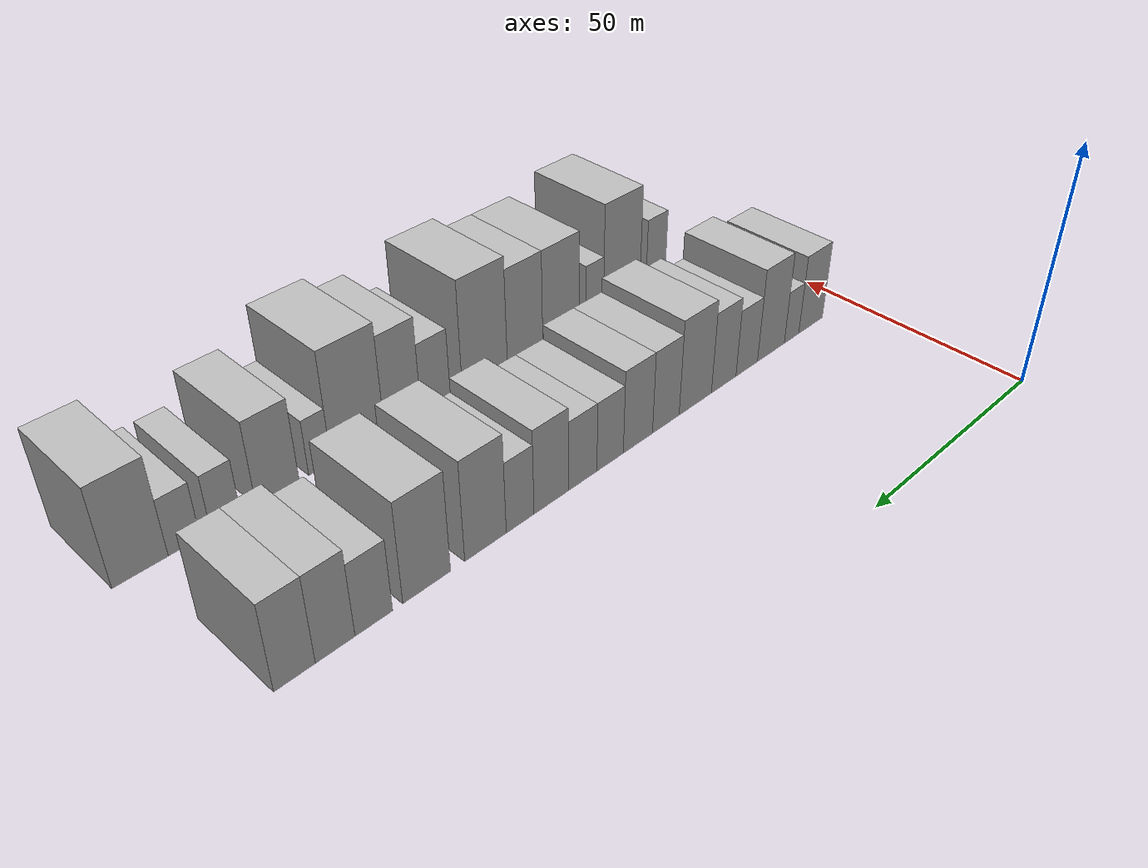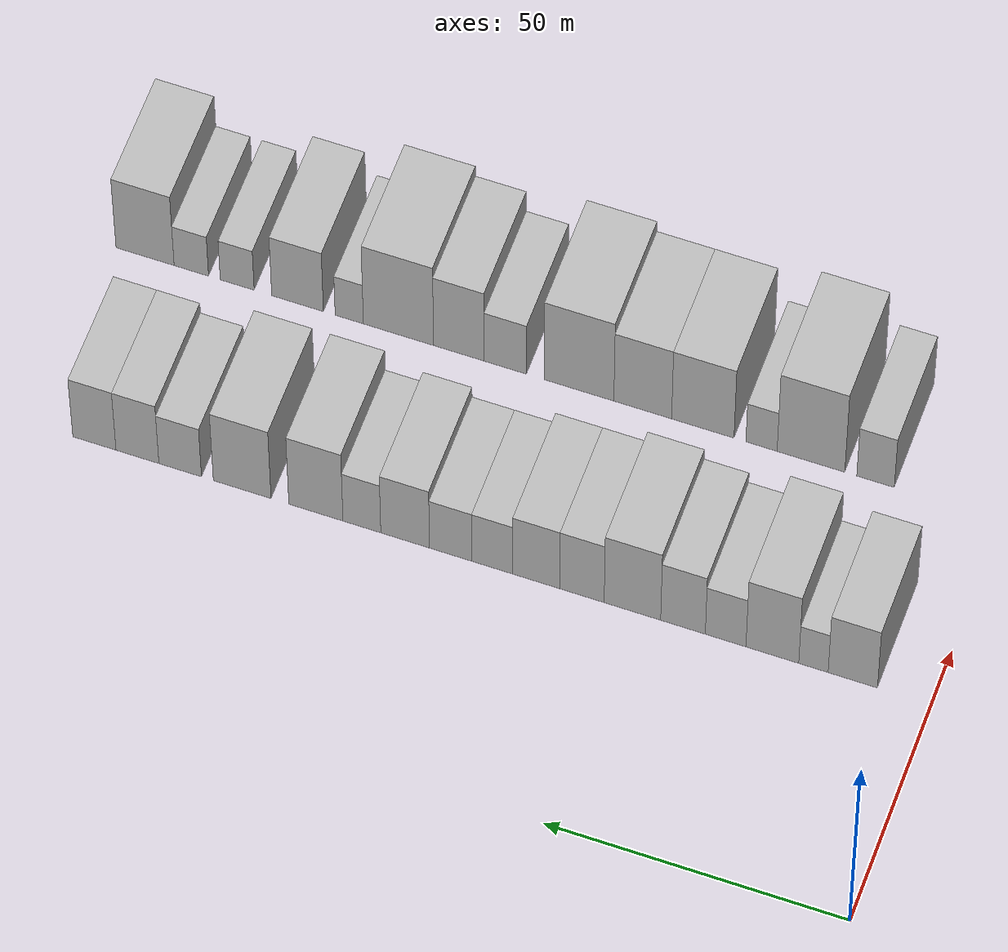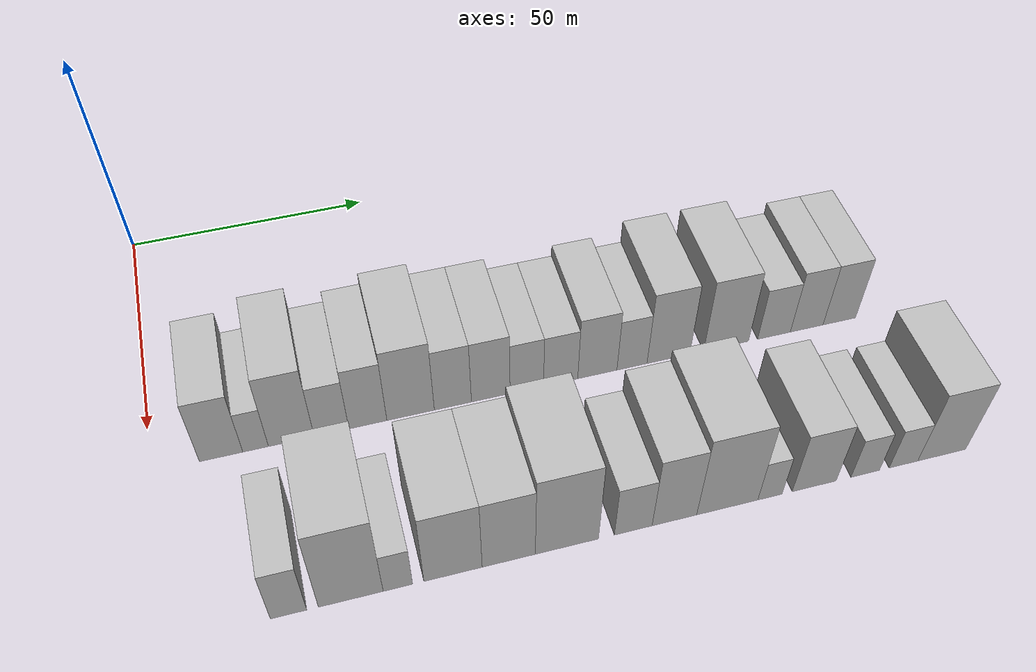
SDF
<sdf version="1.6">
 <world name="default">
  <model name="building_33">
   <static>1</static>
   <pose>50.0000 13.0266 0 0.000000 0.000000 0.000000</pose>
   <link name="link">
    <pose>0 0 9.00 0 0 0</pose>
    <collision name="collision"><geometry><box><size>20.0000 8.1283 18.0000</size></box></geometry></collision>
    <visual name="visual">
     <cast_shadows>0</cast_shadows>
     <geometry><box><size>20.0000 8.1283 18.0000</size></box></geometry>
     <material>
      <script>
       <uri>model://HANNAS_wall/materials/scripts</uri>
       <uri>model://HANNAS_wall/materials/textures</uri>
       <name>vrc/HANNAS_wall</name>
      </script>
     </material>
    </visual>
   </link>
  </model>
  <model name="building_34">
   <static>1</static>
   <pose>50.0000 19.5175 0 0.000000 0.000000 0.000000</pose>
   <link name="link">
    <pose>0 0 6.00 0 0 0</pose>
    <collision name="collision"><geometry><box><size>20.0000 4.8535 12.0000</size></box></geometry></collision>
    <visual name="visual">
     <cast_shadows>0</cast_shadows>
     <geometry><box><size>20.0000 4.8535 12.0000</size></box></geometry>
     <material>
      <script>
       <uri>model://HANNAS_wall/materials/scripts</uri>
       <uri>model://HANNAS_wall/materials/textures</uri>
       <name>vrc/HANNAS_wall</name>
      </script>
     </material>
    </visual>
   </link>
  </model>
  <model name="building_35">
   <static>1</static>
   <pose>50.0000 26.3056 0 0.000000 0.000000 0.000000</pose>
   <link name="link">
    <pose>0 0 10.50 0 0 0</pose>
    <collision name="collision"><geometry><box><size>20.0000 8.7228 21.0000</size></box></geometry></collision>
    <visual name="visual">
     <cast_shadows>0</cast_shadows>
     <geometry><box><size>20.0000 8.7228 21.0000</size></box></geometry>
     <material>
      <script>
       <uri>model://HANNAS_wall/materials/scripts</uri>
       <uri>model://HANNAS_wall/materials/textures</uri>
       <name>vrc/HANNAS_wall</name>
      </script>
     </material>
    </visual>
   </link>
  </model>
  <model name="building_36">
   <static>1</static>
   <pose>50.0000 34.0300 0 0.000000 0.000000 0.000000</pose>
   <link name="link">
    <pose>0 0 7.50 0 0 0</pose>
    <collision name="collision"><geometry><box><size>20.0000 6.7259 15.0000</size></box></geometry></collision>
    <visual name="visual">
     <cast_shadows>0</cast_shadows>
     <geometry><box><size>20.0000 6.7259 15.0000</size></box></geometry>
     <material>
      <script>
       <uri>model://HANNAS_wall/materials/scripts</uri>
       <uri>model://HANNAS_wall/materials/textures</uri>
       <name>vrc/HANNAS_wall</name>
      </script>
     </material>
    </visual>
   </link>
  </model>
  <model name="building_37">
   <static>1</static>
   <pose>50.0000 41.0976 0 0.000000 0.000000 0.000000</pose>
   <link name="link">
    <pose>0 0 9.00 0 0 0</pose>
    <collision name="collision"><geometry><box><size>20.0000 7.4093 18.0000</size></box></geometry></collision>
    <visual name="visual">
     <cast_shadows>0</cast_shadows>
     <geometry><box><size>20.0000 7.4093 18.0000</size></box></geometry>
     <material>
      <script>
       <uri>model://HANNAS_wall/materials/scripts</uri>
       <uri>model://HANNAS_wall/materials/textures</uri>
       <name>vrc/HANNAS_wall</name>
      </script>
     </material>
    </visual>
   </link>
  </model>
  <model name="building_38">
   <static>1</static>
   <pose>50.0000 49.4963 0 0.000000 0.000000 0.000000</pose>
   <link name="link">
    <pose>0 0 10.50 0 0 0</pose>
    <collision name="collision"><geometry><box><size>20.0000 9.3881 21.0000</size></box></geometry></collision>
    <visual name="visual">
     <cast_shadows>0</cast_shadows>
     <geometry><box><size>20.0000 9.3881 21.0000</size></box></geometry>
     <material>
      <script>
       <uri>model://HANNAS_wall/materials/scripts</uri>
       <uri>model://HANNAS_wall/materials/textures</uri>
       <name>vrc/HANNAS_wall</name>
      </script>
     </material>
    </visual>
   </link>
  </model>
  <model name="building_39">
   <static>1</static>
   <pose>50.0000 57.9015 0 0.000000 0.000000 0.000000</pose>
   <link name="link">
    <pose>0 0 9.00 0 0 0</pose>
    <collision name="collision"><geometry><box><size>20.0000 7.4222 18.0000</size></box></geometry></collision>
    <visual name="visual">
     <cast_shadows>0</cast_shadows>
     <geometry><box><size>20.0000 7.4222 18.0000</size></box></geometry>
     <material>
      <script>
       <uri>model://HANNAS_wall/materials/scripts</uri>
       <uri>model://HANNAS_wall/materials/textures</uri>
       <name>vrc/HANNAS_wall</name>
      </script>
     </material>
    </visual>
   </link>
  </model>
  <model name="building_40">
   <static>1</static>
   <pose>50.0000 65.5200 0 0.000000 0.000000 0.000000</pose>
   <link name="link">
    <pose>0 0 9.00 0 0 0</pose>
    <collision name="collision"><geometry><box><size>20.0000 7.8149 18.0000</size></box></geometry></collision>
    <visual name="visual">
     <cast_shadows>0</cast_shadows>
     <geometry><box><size>20.0000 7.8149 18.0000</size></box></geometry>
     <material>
      <script>
       <uri>model://HANNAS_wall/materials/scripts</uri>
       <uri>model://HANNAS_wall/materials/textures</uri>
       <name>vrc/HANNAS_wall</name>
      </script>
     </material>
    </visual>
   </link>
  </model>
  <model name="building_41">
   <static>1</static>
   <pose>50.0000 72.8399 0 0.000000 0.000000 0.000000</pose>
   <link name="link">
    <pose>0 0 7.50 0 0 0</pose>
    <collision name="collision"><geometry><box><size>20.0000 6.8249 15.0000</size></box></geometry></collision>
    <visual name="visual">
     <cast_shadows>0</cast_shadows>
     <geometry><box><size>20.0000 6.8249 15.0000</size></box></geometry>
     <material>
      <script>
       <uri>model://HANNAS_wall/materials/scripts</uri>
       <uri>model://HANNAS_wall/materials/textures</uri>
       <name>vrc/HANNAS_wall</name>
      </script>
     </material>
    </visual>
   </link>
  </model>
  <model name="building_42">
   <static>1</static>
   <pose>50.0000 79.7931 0 0.000000 0.000000 0.000000</pose>
   <link name="link">
    <pose>0 0 7.50 0 0 0</pose>
    <collision name="collision"><geometry><box><size>20.0000 7.0817 15.0000</size></box></geometry></collision>
    <visual name="visual">
     <cast_shadows>0</cast_shadows>
     <geometry><box><size>20.0000 7.0817 15.0000</size></box></geometry>
     <material>
      <script>
       <uri>model://HANNAS_wall/materials/scripts</uri>
       <uri>model://HANNAS_wall/materials/textures</uri>
       <name>vrc/HANNAS_wall</name>
      </script>
     </material>
    </visual>
   </link>
  </model>
  <model name="building_43">
   <static>1</static>
   <pose>50.0000 87.4263 0 0.000000 0.000000 0.000000</pose>
   <link name="link">
    <pose>0 0 9.00 0 0 0</pose>
    <collision name="collision"><geometry><box><size>20.0000 8.1846 18.0000</size></box></geometry></collision>
    <visual name="visual">
     <cast_shadows>0</cast_shadows>
     <geometry><box><size>20.0000 8.1846 18.0000</size></box></geometry>
     <material>
      <script>
       <uri>model://HANNAS_wall/materials/scripts</uri>
       <uri>model://HANNAS_wall/materials/textures</uri>
       <name>vrc/HANNAS_wall</name>
      </script>
     </material>
    </visual>
   </link>
  </model>
  <model name="building_44">
   <static>1</static>
   <pose>50.0000 94.6946 0 0.000000 0.000000 0.000000</pose>
   <link name="link">
    <pose>0 0 7.50 0 0 0</pose>
    <collision name="collision"><geometry><box><size>20.0000 6.3521 15.0000</size></box></geometry></collision>
    <visual name="visual">
     <cast_shadows>0</cast_shadows>
     <geometry><box><size>20.0000 6.3521 15.0000</size></box></geometry>
     <material>
      <script>
       <uri>model://HANNAS_wall/materials/scripts</uri>
       <uri>model://HANNAS_wall/materials/textures</uri>
       <name>vrc/HANNAS_wall</name>
      </script>
     </material>
    </visual>
   </link>
  </model>
  <model name="building_45">
   <static>1</static>
   <pose>50.0000 102.4295 0 0.000000 0.000000 0.000000</pose>
   <link name="link">
    <pose>0 0 10.50 0 0 0</pose>
    <collision name="collision"><geometry><box><size>20.0000 9.1175 21.0000</size></box></geometry></collision>
    <visual name="visual">
     <cast_shadows>0</cast_shadows>
     <geometry><box><size>20.0000 9.1175 21.0000</size></box></geometry>
     <material>
      <script>
       <uri>model://HANNAS_wall/materials/scripts</uri>
       <uri>model://HANNAS_wall/materials/textures</uri>
       <name>vrc/HANNAS_wall</name>
      </script>
     </material>
    </visual>
   </link>
  </model>
  <model name="building_46">
   <static>1</static>
   <pose>50.0000 114.8611 0 0.000000 0.000000 0.000000</pose>
   <link name="link">
    <pose>0 0 10.50 0 0 0</pose>
    <collision name="collision"><geometry><box><size>20.0000 9.7458 21.0000</size></box></geometry></collision>
    <visual name="visual">
     <cast_shadows>0</cast_shadows>
     <geometry><box><size>20.0000 9.7458 21.0000</size></box></geometry>
     <material>
      <script>
       <uri>model://HANNAS_wall/materials/scripts</uri>
       <uri>model://HANNAS_wall/materials/textures</uri>
       <name>vrc/HANNAS_wall</name>
      </script>
     </material>
    </visual>
   </link>
  </model>
  <model name="building_47">
   <static>1</static>
   <pose>50.0000 125.3384 0 0.000000 0.000000 0.000000</pose>
   <link name="link">
    <pose>0 0 7.50 0 0 0</pose>
    <collision name="collision"><geometry><box><size>20.0000 7.2088 15.0000</size></box></geometry></collision>
    <visual name="visual">
     <cast_shadows>0</cast_shadows>
     <geometry><box><size>20.0000 7.2088 15.0000</size></box></geometry>
     <material>
      <script>
       <uri>model://HANNAS_wall/materials/scripts</uri>
       <uri>model://HANNAS_wall/materials/textures</uri>
       <name>vrc/HANNAS_wall</name>
      </script>
     </material>
    </visual>
   </link>
  </model>
  <model name="building_48">
   <static>1</static>
   <pose>50.0000 132.5810 0 0.000000 0.000000 0.000000</pose>
   <link name="link">
    <pose>0 0 9.00 0 0 0</pose>
    <collision name="collision"><geometry><box><size>20.0000 7.2764 18.0000</size></box></geometry></collision>
    <visual name="visual">
     <cast_shadows>0</cast_shadows>
     <geometry><box><size>20.0000 7.2764 18.0000</size></box></geometry>
     <material>
      <script>
       <uri>model://HANNAS_wall/materials/scripts</uri>
       <uri>model://HANNAS_wall/materials/textures</uri>
       <name>vrc/HANNAS_wall</name>
      </script>
     </material>
    </visual>
   </link>
  </model>
  <model name="building_49">
   <static>1</static>
   <pose>50.0000 139.8819 0 0.000000 0.000000 0.000000</pose>
   <link name="link">
    <pose>0 0 9.00 0 0 0</pose>
    <collision name="collision"><geometry><box><size>20.0000 7.3253 18.0000</size></box></geometry></collision>
    <visual name="visual">
     <cast_shadows>0</cast_shadows>
     <geometry><box><size>20.0000 7.3253 18.0000</size></box></geometry>
     <material>
      <script>
       <uri>model://HANNAS_wall/materials/scripts</uri>
       <uri>model://HANNAS_wall/materials/textures</uri>
       <name>vrc/HANNAS_wall</name>
      </script>
     </material>
    </visual>
   </link>
  </model>
  <model name="building_96">
   <static>1</static>
   <pose>85.0000 20.9783 0 0.000000 0.000000 0.000000</pose>
   <link name="link">
    <pose>0 0 7.50 0 0 0</pose>
    <collision name="collision"><geometry><box><size>20.0000 6.2556 15.0000</size></box></geometry></collision>
    <visual name="visual">
     <cast_shadows>0</cast_shadows>
     <geometry><box><size>20.0000 6.2556 15.0000</size></box></geometry>
     <material>
      <script>
       <uri>model://HANNAS_wall/materials/scripts</uri>
       <uri>model://HANNAS_wall/materials/textures</uri>
       <name>vrc/HANNAS_wall</name>
      </script>
     </material>
    </visual>
   </link>
  </model>
  <model name="building_97">
   <static>1</static>
   <pose>85.0000 31.7660 0 0.000000 0.000000 0.000000</pose>
   <link name="link">
    <pose>0 0 12.00 0 0 0</pose>
    <collision name="collision"><geometry><box><size>20.0000 11.3199 24.0000</size></box></geometry></collision>
    <visual name="visual">
     <cast_shadows>0</cast_shadows>
     <geometry><box><size>20.0000 11.3199 24.0000</size></box></geometry>
     <material>
      <script>
       <uri>model://HANNAS_wall/materials/scripts</uri>
       <uri>model://HANNAS_wall/materials/textures</uri>
       <name>vrc/HANNAS_wall</name>
      </script>
     </material>
    </visual>
   </link>
  </model>
  <model name="building_98">
   <static>1</static>
   <pose>85.0000 40.0359 0 0.000000 0.000000 0.000000</pose>
   <link name="link">
    <pose>0 0 6.00 0 0 0</pose>
    <collision name="collision"><geometry><box><size>20.0000 5.2199 12.0000</size></box></geometry></collision>
    <visual name="visual">
     <cast_shadows>0</cast_shadows>
     <geometry><box><size>20.0000 5.2199 12.0000</size></box></geometry>
     <material>
      <script>
       <uri>model://HANNAS_wall/materials/scripts</uri>
       <uri>model://HANNAS_wall/materials/textures</uri>
       <name>vrc/HANNAS_wall</name>
      </script>
     </material>
    </visual>
   </link>
  </model>
  <model name="building_99">
   <static>1</static>
   <pose>85.0000 49.8886 0 0.000000 0.000000 0.000000</pose>
   <link name="link">
    <pose>0 0 10.50 0 0 0</pose>
    <collision name="collision"><geometry><box><size>20.0000 10.4854 21.0000</size></box></geometry></collision>
    <visual name="visual">
     <cast_shadows>0</cast_shadows>
     <geometry><box><size>20.0000 10.4854 21.0000</size></box></geometry>
     <material>
      <script>
       <uri>model://HANNAS_wall/materials/scripts</uri>
       <uri>model://HANNAS_wall/materials/textures</uri>
       <name>vrc/HANNAS_wall</name>
      </script>
     </material>
    </visual>
   </link>
  </model>
  <model name="building_100">
   <static>1</static>
   <pose>85.0000 59.9906 0 0.000000 0.000000 0.000000</pose>
   <link name="link">
    <pose>0 0 10.50 0 0 0</pose>
    <collision name="collision"><geometry><box><size>20.0000 9.7186 21.0000</size></box></geometry></collision>
    <visual name="visual">
     <cast_shadows>0</cast_shadows>
     <geometry><box><size>20.0000 9.7186 21.0000</size></box></geometry>
     <material>
      <script>
       <uri>model://HANNAS_wall/materials/scripts</uri>
       <uri>model://HANNAS_wall/materials/textures</uri>
       <name>vrc/HANNAS_wall</name>
      </script>
     </material>
    </visual>
   </link>
  </model>
  <model name="building_101">
   <static>1</static>
   <pose>85.0000 70.7240 0 0.000000 0.000000 0.000000</pose>
   <link name="link">
    <pose>0 0 12.00 0 0 0</pose>
    <collision name="collision"><geometry><box><size>20.0000 11.7483 24.0000</size></box></geometry></collision>
    <visual name="visual">
     <cast_shadows>0</cast_shadows>
     <geometry><box><size>20.0000 11.7483 24.0000</size></box></geometry>
     <material>
      <script>
       <uri>model://HANNAS_wall/materials/scripts</uri>
       <uri>model://HANNAS_wall/materials/textures</uri>
       <name>vrc/HANNAS_wall</name>
      </script>
     </material>
    </visual>
   </link>
  </model>
  <model name="building_102">
   <static>1</static>
   <pose>85.0000 83.1724 0 0.000000 0.000000 0.000000</pose>
   <link name="link">
    <pose>0 0 7.50 0 0 0</pose>
    <collision name="collision"><geometry><box><size>20.0000 7.1483 15.0000</size></box></geometry></collision>
    <visual name="visual">
     <cast_shadows>0</cast_shadows>
     <geometry><box><size>20.0000 7.1483 15.0000</size></box></geometry>
     <material>
      <script>
       <uri>model://HANNAS_wall/materials/scripts</uri>
       <uri>model://HANNAS_wall/materials/textures</uri>
       <name>vrc/HANNAS_wall</name>
      </script>
     </material>
    </visual>
   </link>
  </model>
  <model name="building_103">
   <static>1</static>
   <pose>85.0000 91.0335 0 0.000000 0.000000 0.000000</pose>
   <link name="link">
    <pose>0 0 10.50 0 0 0</pose>
    <collision name="collision"><geometry><box><size>20.0000 8.5740 21.0000</size></box></geometry></collision>
    <visual name="visual">
     <cast_shadows>0</cast_shadows>
     <geometry><box><size>20.0000 8.5740 21.0000</size></box></geometry>
     <material>
      <script>
       <uri>model://HANNAS_wall/materials/scripts</uri>
       <uri>model://HANNAS_wall/materials/textures</uri>
       <name>vrc/HANNAS_wall</name>
      </script>
     </material>
    </visual>
   </link>
  </model>
  <model name="building_104">
   <static>1</static>
   <pose>85.0000 101.2971 0 0.000000 0.000000 0.000000</pose>
   <link name="link">
    <pose>0 0 12.00 0 0 0</pose>
    <collision name="collision"><geometry><box><size>20.0000 11.9530 24.0000</size></box></geometry></collision>
    <visual name="visual">
     <cast_shadows>0</cast_shadows>
     <geometry><box><size>20.0000 11.9530 24.0000</size></box></geometry>
     <material>
      <script>
       <uri>model://HANNAS_wall/materials/scripts</uri>
       <uri>model://HANNAS_wall/materials/textures</uri>
       <name>vrc/HANNAS_wall</name>
      </script>
     </material>
    </visual>
   </link>
  </model>
  <model name="building_105">
   <static>1</static>
   <pose>85.0000 109.6788 0 0.000000 0.000000 0.000000</pose>
   <link name="link">
    <pose>0 0 6.00 0 0 0</pose>
    <collision name="collision"><geometry><box><size>20.0000 4.8104 12.0000</size></box></geometry></collision>
    <visual name="visual">
     <cast_shadows>0</cast_shadows>
     <geometry><box><size>20.0000 4.8104 12.0000</size></box></geometry>
     <material>
      <script>
       <uri>model://HANNAS_wall/materials/scripts</uri>
       <uri>model://HANNAS_wall/materials/textures</uri>
       <name>vrc/HANNAS_wall</name>
      </script>
     </material>
    </visual>
   </link>
  </model>
  <model name="building_106">
   <static>1</static>
   <pose>85.0000 118.4987 0 0.000000 0.000000 0.000000</pose>
   <link name="link">
    <pose>0 0 9.00 0 0 0</pose>
    <collision name="collision"><geometry><box><size>20.0000 8.8294 18.0000</size></box></geometry></collision>
    <visual name="visual">
     <cast_shadows>0</cast_shadows>
     <geometry><box><size>20.0000 8.8294 18.0000</size></box></geometry>
     <material>
      <script>
       <uri>model://HANNAS_wall/materials/scripts</uri>
       <uri>model://HANNAS_wall/materials/textures</uri>
       <name>vrc/HANNAS_wall</name>
      </script>
     </material>
    </visual>
   </link>
  </model>
  <model name="building_107">
   <static>1</static>
   <pose>85.0000 128.8159 0 0.000000 0.000000 0.000000</pose>
   <link name="link">
    <pose>0 0 6.00 0 0 0</pose>
    <collision name="collision"><geometry><box><size>20.0000 5.8049 12.0000</size></box></geometry></collision>
    <visual name="visual">
     <cast_shadows>0</cast_shadows>
     <geometry><box><size>20.0000 5.8049 12.0000</size></box></geometry>
     <material>
      <script>
       <uri>model://HANNAS_wall/materials/scripts</uri>
       <uri>model://HANNAS_wall/materials/textures</uri>
       <name>vrc/HANNAS_wall</name>
      </script>
     </material>
    </visual>
   </link>
  </model>
  <model name="building_108">
   <static>1</static>
   <pose>85.0000 136.6722 0 0.000000 0.000000 0.000000</pose>
   <link name="link">
    <pose>0 0 6.00 0 0 0</pose>
    <collision name="collision"><geometry><box><size>20.0000 5.9077 12.0000</size></box></geometry></collision>
    <visual name="visual">
     <cast_shadows>0</cast_shadows>
     <geometry><box><size>20.0000 5.9077 12.0000</size></box></geometry>
     <material>
      <script>
       <uri>model://HANNAS_wall/materials/scripts</uri>
       <uri>model://HANNAS_wall/materials/textures</uri>
       <name>vrc/HANNAS_wall</name>
      </script>
     </material>
    </visual>
   </link>
  </model>
  <model name="building_109">
   <static>1</static>
   <pose>85.0000 144.6146 0 0.000000 0.000000 0.000000</pose>
   <link name="link">
    <pose>0 0 10.50 0 0 0</pose>
    <collision name="collision"><geometry><box><size>20.0000 9.9771 21.0000</size></box></geometry></collision>
    <visual name="visual">
     <cast_shadows>0</cast_shadows>
     <geometry><box><size>20.0000 9.9771 21.0000</size></box></geometry>
     <material>
      <script>
       <uri>model://HANNAS_wall/materials/scripts</uri>
       <uri>model://HANNAS_wall/materials/textures</uri>
       <name>vrc/HANNAS_wall</name>
      </script>
     </material>
    </visual>
   </link>
  </model>
 </world>
</sdf>
